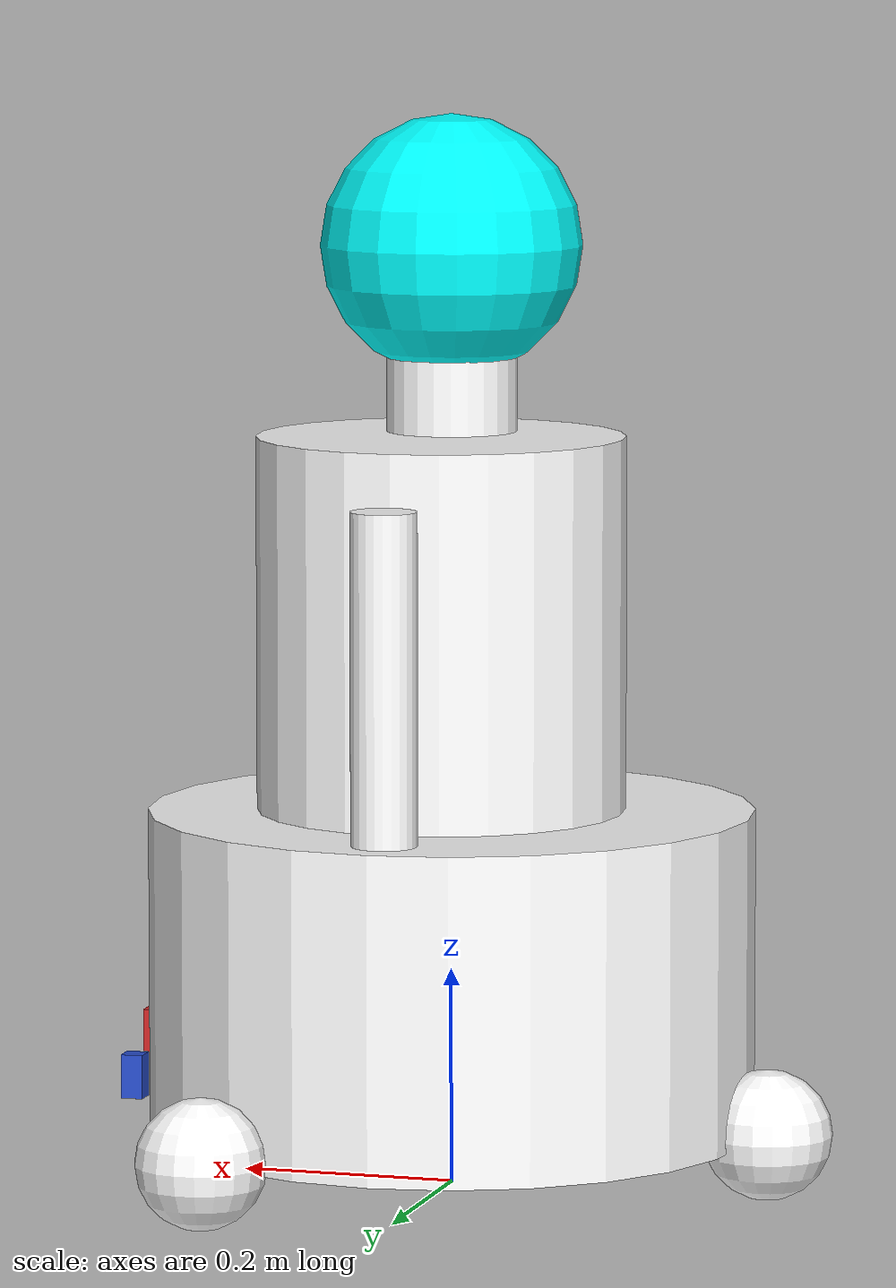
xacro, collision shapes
<?xml version="1.0"?>
<robot xmlns:xacro="http://www.ros.org/wiki/xacro" name="semubot">

  <xacro:include filename="$(find semubot)/urdf/head.urdf.xacro"/>

  <material name="white">
    <color rgba="1 1 1 1"/>
  </material>

  <material name="cyan">
    <color rgba="0 1 1 1"/>
  </material>

  <material name="black">
    <color rgba="0 0 0 1"/>
  </material>

  <!-- Base Link -->
  <link name="base_link">
    <visual>
      <origin xyz="0 0 0.04" rpy="0 0 0"/>
      <geometry>
        <mesh filename="package://semubot/meshes/movement_frame.stl" scale="1 1 1"/>
      </geometry>
      <material name="white"/>
    </visual>
    <collision>
      <origin xyz="0 0 0.2" rpy="0 0 0"/>
      <geometry>
        <cylinder radius="0.28" length="0.3"/>
      </geometry>
    </collision>
    <inertial>
      <origin xyz="0 0 0.02" rpy="0 0 0"/>
      <mass value="5.0"/>
      <inertia ixx="0.1" ixy="0.0" ixz="0.0" iyy="0.1" iyz="0.0" izz="0.1"/>
    </inertial>
  </link>

  <link name="world"/>
  <joint name="world_to_base" type="fixed">
    <parent link="world"/>
    <child link="base_link"/>
  </joint>

  <!-- Macro for Omni-ball -->
  <xacro:macro name="omni_ball_macro" params="name xyz rpy scale mass ixx iyy izz">
    <link name="${name}">
      <visual>
        <origin xyz="0 0 0" rpy="0 0 0"/>
        <geometry>
          <mesh filename="package://semubot/meshes/omni_ball.stl" scale="${scale} ${scale} ${scale}"/>
        </geometry>
        <material name="white"/>
      </visual>
      <collision>
        <origin xyz="0 0 0" rpy="0 0 0"/>
        <geometry>
          <sphere radius="0.06"/>
        </geometry>
      </collision>
      <inertial>
        <origin xyz="0 0 0" rpy="0 0 0"/>
        <mass value="${mass}"/>
        <inertia ixx="${ixx}" ixy="0.0" ixz="0.0" iyy="${iyy}" iyz="0.0" izz="${izz}"/>
      </inertial>
    </link>
  </xacro:macro>

  <!-- Omni-balls -->
  <xacro:omni_ball_macro name="omni_ball_1" xyz="0 0 0" rpy="0 0 0" scale="1" mass="0.1" ixx="0.001" iyy="0.001" izz="0.001"/>
  <xacro:omni_ball_macro name="omni_ball_2" xyz="0 0 0" rpy="0 0 0" scale="1" mass="0.1" ixx="0.001" iyy="0.001" izz="0.001"/>
  <xacro:omni_ball_macro name="omni_ball_3" xyz="0 0 0" rpy="0 0 0" scale="1" mass="0.1" ixx="0.001" iyy="0.001" izz="0.001"/>

  <!-- Joints for Omni-balls -->
  <joint name="omni_ball_1_joint" type="continuous">
    <parent link="base_link"/>
    <child link="omni_ball_1"/>
    <origin xyz="0.16 0.265 0.06" rpy="0 0 ${2*pi/3}"/>
    <axis xyz="1 0 0"/>
    <limit effort="50" velocity="1.0"/>
  </joint>

  <joint name="omni_ball_2_joint" type="continuous">
    <parent link="base_link"/>
    <child link="omni_ball_2"/>
    <origin xyz="0.16 -0.265 0.06" rpy="0 0 ${-2*pi/3}"/>
    <axis xyz="1 0 0"/>
    <limit effort="50" velocity="1.0"/>
  </joint>

  <joint name="omni_ball_3_joint" type="continuous">
    <parent link="base_link"/>
    <child link="omni_ball_3"/>
    <origin xyz="-0.3 0 0.06" rpy="0 0 0"/>
    <axis xyz="1 0 0"/>
    <limit effort="50" velocity="1.0"/>
  </joint>

  <!-- Main Body -->
  <link name="main_body">
    <visual>
      <geometry>
        <mesh filename="package://semubot/meshes/body.stl" scale="1 1 1"/>
      </geometry>
      <material name="white"/>
    </visual>
    <collision>
      <origin xyz="0.01 0 0.4" rpy="0 0 0"/>
      <geometry>
        <cylinder radius="0.17" length="0.5"/>
      </geometry>
    </collision>
    <inertial>
      <origin xyz="0 0 0.05" rpy="0 0 0"/>
      <mass value="3.0"/>
      <inertia ixx="0.05" ixy="0.0" ixz="0.0" iyy="0.05" iyz="0.0" izz="0.05"/>
    </inertial>
  </link>

  <joint name="body_joint" type="fixed">
    <parent link="base_link"/>
    <child link="main_body"/>
    <origin xyz="0 0 0.045" rpy="0 0 0"/>
  </joint>

  <!-- Left Arm -->
  <link name="left_arm">
    <visual>
      <geometry>
        <mesh filename="package://semubot/meshes/left_hand.stl" scale="1 1 1"/>
      </geometry>
      <material name="white"/>
    </visual>
    <collision>
      <origin xyz="0 0.05 -0.1" rpy="0 0 0"/>
      <geometry>
        <cylinder radius="0.03" length="0.3"/>
      </geometry>
    </collision>
    <inertial>
      <origin xyz="0 0 0" rpy="0 0 0"/>
      <mass value="0.5"/>
      <inertia ixx="0.01" ixy="0.0" ixz="0.0" iyy="0.01" iyz="0.0" izz="0.01"/>
    </inertial>
  </link>

  <joint name="left_arm_joint" type="revolute">
    <parent link="main_body"/>
    <child link="left_arm"/>
    <origin xyz="0 0.175 0.555" rpy="0 0 0"/>
    <axis xyz="0 1 0"/>
    <limit lower="-1.57" upper="1.57" effort="10" velocity="1.0"/>
  </joint>

  <!-- Right Arm -->
  <link name="right_arm">
    <visual>
      <geometry>
        <mesh filename="package://semubot/meshes/right_hand.stl" scale="1 1 1"/>
      </geometry>
      <material name="white"/>
    </visual>
    <collision>
      <origin xyz="0 -0.05 -0.1" rpy="0 0 0"/>
      <geometry>
        <cylinder radius="0.03" length="0.3"/>
      </geometry>
    </collision>
    <inertial>
      <origin xyz="0 0 0" rpy="0 0 0"/>
      <mass value="0.5"/>
      <inertia ixx="0.01" ixy="0.0" ixz="0.0" iyy="0.01" iyz="0.0" izz="0.01"/>
    </inertial>
  </link>

  <joint name="right_arm_joint" type="revolute">
    <parent link="main_body"/>
    <child link="right_arm"/>
    <origin xyz="0 -0.175 0.555" rpy="0 0 0"/>
    <axis xyz="0 1 0"/>
    <limit lower="-1.57" upper="1.57" effort="10" velocity="1.0"/>
  </joint>

  <!-- Head -->
  <xacro:head_macro parent="main_body" xyz="0 0 0.705" rpy="0 0 0"/>

  <!-- ==================== ULTRASONIC SENSORS ==================== -->

  <!-- Front Sensor -->
  <link name="ultrasonic_front">
    <visual>
      <geometry>
        <mesh filename="package://semubot/meshes/HC-SR04.stl" scale="0.001 0.001 0.001"/>
      </geometry>
      <material name="red"/>
    </visual>
    <collision>
      <geometry>
        <box size="0.02 0.04 0.02"/>
      </geometry>
    </collision>
    <inertial>
      <mass value="0.01"/>
      <inertia ixx="1e-6" ixy="0" ixz="0" iyy="1e-6" iyz="0" izz="1e-6"/>
    </inertial>
  </link>

  <joint name="ultrasonic_front_joint" type="fixed">
    <parent link="main_body"/>
    <child link="ultrasonic_front"/>
    <origin xyz="0.293 -0.02 0.08" rpy="1.5708 0 1.5708"/>
  </joint>

  <!-- Front-Left Sensor -->
  <link name="ultrasonic_left">
    <visual>
      <geometry>
        <mesh filename="package://semubot/meshes/HC-SR04.stl" scale="0.001 0.001 0.001"/>
      </geometry>
      <material name="blue"/>
    </visual>
    <collision>
      <geometry>
        <box size="0.02 0.04 0.02"/>
      </geometry>
    </collision>
    <inertial>
      <mass value="0.01"/>
      <inertia ixx="1e-6" ixy="0" ixz="0" iyy="1e-6" iyz="0" izz="1e-6"/>
    </inertial>
  </link>

  <joint name="ultrasonic_left_joint" type="fixed">
    <parent link="main_body"/>
    <child link="ultrasonic_left"/>
    <origin xyz="0.243 0.20 0.08" rpy="1.5708 0 1.5708"/>
  </joint>

  <!-- Front-Right Sensor -->
  <link name="ultrasonic_right">
    <visual>
      <geometry>
        <mesh filename="package://semubot/meshes/HC-SR04.stl" scale="0.001 0.001 0.001"/>
      </geometry>
      <material name="blue"/>
    </visual>
    <collision>
      <geometry>
        <box size="0.02 0.04 0.02"/>
      </geometry>
    </collision>
    <inertial>
      <mass value="0.01"/>
      <inertia ixx="1e-6" ixy="0" ixz="0" iyy="1e-6" iyz="0" izz="1e-6"/>
    </inertial>
  </link>

  <joint name="ultrasonic_right_joint" type="fixed">
    <parent link="main_body"/>
    <child link="ultrasonic_right"/>
    <origin xyz="0.243 -0.24 0.08" rpy="1.5708 0 1.5708"/>
  </joint>

  <!-- ros2_control Hardware Interface -->
  <ros2_control name="SemubotHardwareSystem" type="system">
    <hardware>
      <plugin>semubot_hardware_interface/SemubotHardwareInterface</plugin>
      <param name="wheel_radius">0.06</param>
      <param name="base_radius">0.305</param>
    </hardware>
    <joint name="omni_ball_1_joint">
      <command_interface name="velocity">
        <param name="min">-10.0</param>
        <param name="max">10.0</param>
      </command_interface>
      <state_interface name="position"/>
      <state_interface name="velocity"/>
      <state_interface name="effort"/>
    </joint>
    <joint name="omni_ball_2_joint">
      <command_interface name="velocity">
        <param name="min">-10.0</param>
        <param name="max">10.0</param>
      </command_interface>
      <state_interface name="position"/>
      <state_interface name="velocity"/>
      <state_interface name="effort"/>
    </joint>
    <joint name="omni_ball_3_joint">
      <command_interface name="velocity">
        <param name="min">-10.0</param>
        <param name="max">10.0</param>
      </command_interface>
      <state_interface name="position"/>
      <state_interface name="velocity"/>
      <state_interface name="effort"/>
    </joint>
  </ros2_control>

</robot>

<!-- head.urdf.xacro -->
<robot xmlns:xacro="http://www.ros.org/wiki/xacro">

  <xacro:macro name="head_macro" params="parent xyz rpy">

    <!-- Head Base -->
    <link name="head_base">
      <visual>
        <geometry>
          <mesh filename="package://semubot/meshes/head_base.stl" scale="1 1 1"/>
        </geometry>
        <material name="white"/>
      </visual>
      <collision>
        <origin xyz="0 0 0" rpy="0 0 0"/>
        <geometry>
          <cylinder radius="0.06" length="0.1"/>
        </geometry>
      </collision>
      <inertial>
        <origin xyz="0 0 0" rpy="0 0 0"/>
        <mass value="0.4"/>
        <inertia ixx="0.01" ixy="0.0" ixz="0.0" iyy="0.01" iyz="0.0" izz="0.01"/>
      </inertial>
    </link>

    <joint name="head_joint" type="revolute">
      <parent link="${parent}"/>
      <child link="head_base"/>
      <origin xyz="${xyz}" rpy="${rpy}"/>
      <axis xyz="0 1 0"/>
      <limit lower="-1.57" upper="1.57" effort="10" velocity="1.0"/>
    </joint>

    <!-- Head Scalp -->
    <link name="head_scalp">
      <visual>
        <geometry>
          <mesh filename="package://semubot/meshes/head_scalp.stl" scale="1 1 1"/>
        </geometry>
        <material name="cyan"/>
      </visual>
      <collision>
        <origin xyz="0 0 0.12" rpy="0 0 0"/>
        <geometry>
          <sphere radius="0.12"/>
        </geometry>
      </collision>
      <inertial>
        <origin xyz="0 0 0" rpy="0 0 0"/>
        <mass value="0.2"/>
        <inertia ixx="0.005" ixy="0.0" ixz="0.0" iyy="0.005" iyz="0.0" izz="0.005"/>
      </inertial>
    </link>

    <joint name="head_scalp_joint" type="fixed">
      <parent link="head_base"/>
      <child link="head_scalp"/>
      <origin xyz="0 0 0" rpy="0 0 0"/>
    </joint>

    <!-- Head Screen -->
    <link name="head_screen">
      <visual>
        <geometry>
          <mesh filename="package://semubot/meshes/head_screen.stl" scale="1 1 1"/>
        </geometry>
        <material name="black"/>
      </visual>
      <collision>
        <origin xyz="0 0 0" rpy="0 0 0"/>
        <geometry>
          <box size="0.1 0.01 0.08"/>
        </geometry>
      </collision>
      <inertial>
        <origin xyz="0 0 0" rpy="0 0 0"/>
        <mass value="0.2"/>
        <inertia ixx="0.005" ixy="0.0" ixz="0.0" iyy="0.005" iyz="0.0" izz="0.005"/>
      </inertial>
    </link>

    <joint name="head_screen_joint" type="fixed">
      <parent link="head_base"/>
      <child link="head_screen"/>
      <origin xyz="0 0 0" rpy="0 0 0"/>
    </joint>

  </xacro:macro>

</robot>
